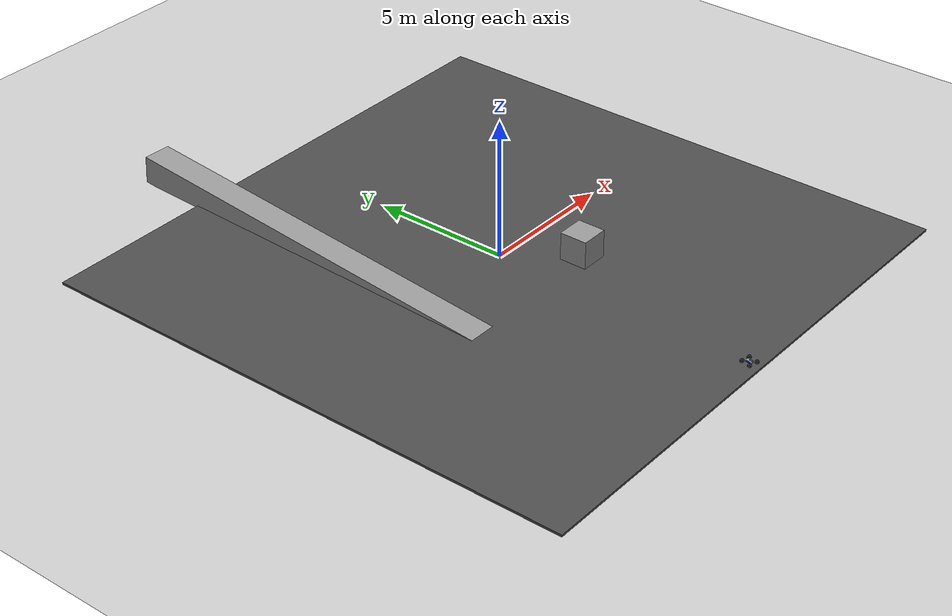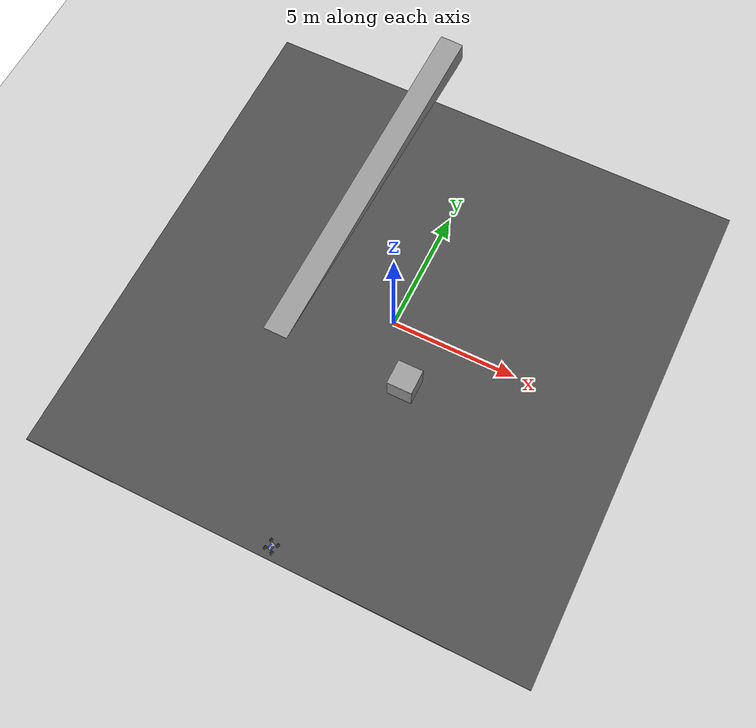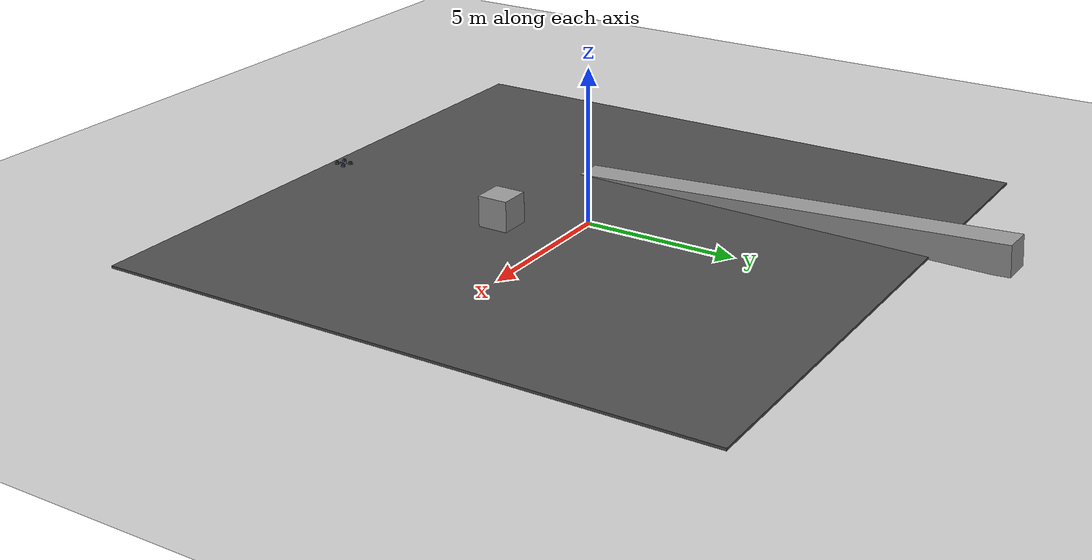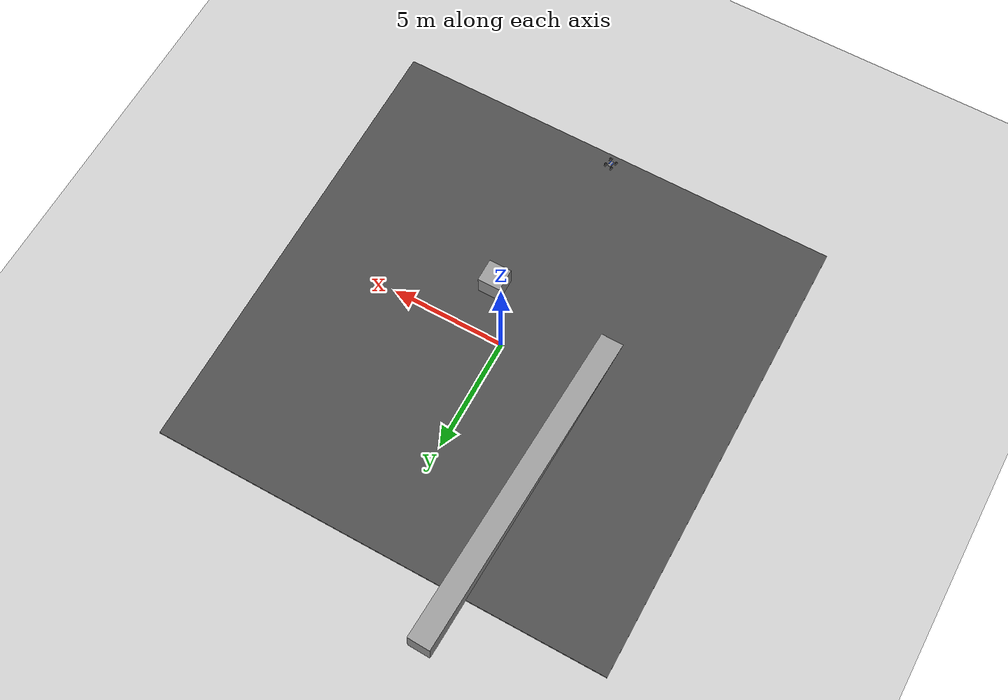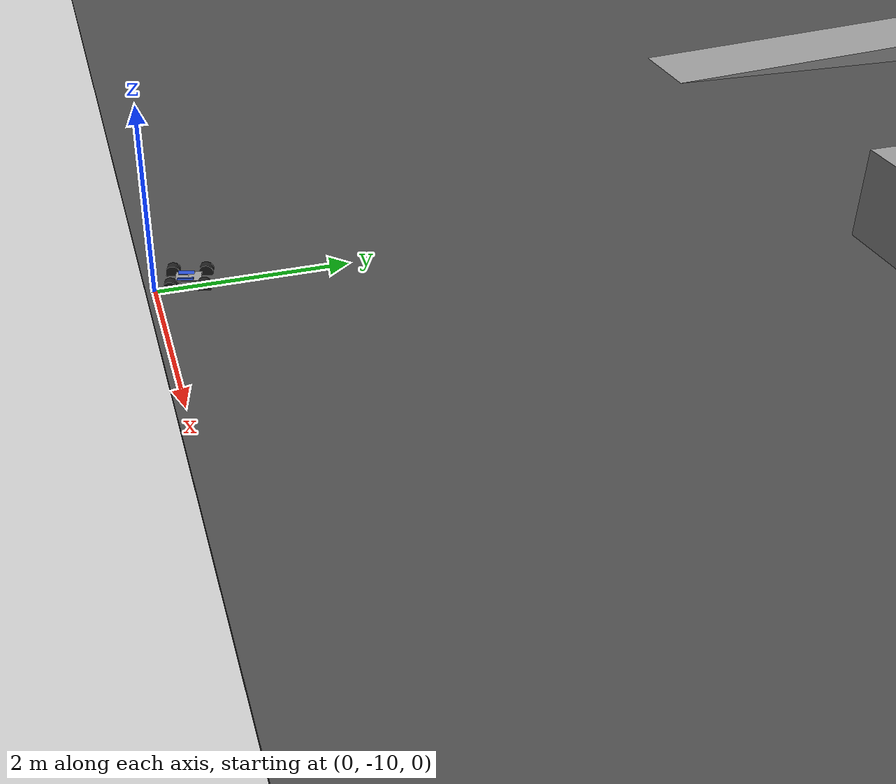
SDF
<sdf version="1.6">
 <world name="default">
  <light name="sun" type="directional">
   <pose>0 0 10 0 -0 0</pose>
   <diffuse>0.8 0.8 0.8 1</diffuse>
   <specular>0.2 0.2 0.2 1</specular>
   <attenuation>
    <range>1000</range>
    <constant>0.9</constant>
    <linear>0.01</linear>
    <quadratic>0.001</quadratic>
   </attenuation>
   <direction>-0.5 0.1 -0.9</direction>
   <spot><inner_angle>0</inner_angle><outer_angle>0</outer_angle><falloff>0</falloff></spot>
  </light>
  <model name="ground_plane">
   <static>1</static>
   <link name="link">
    <collision name="collision">
     <geometry><plane><normal>0 0 1</normal><size>100 100</size></plane></geometry>
     <surface>
      <contact><collide_bitmask>65535</collide_bitmask></contact>
      <friction><ode><mu>100</mu><mu2>50</mu2></ode></friction>
     </surface>
    </collision>
    <visual name="visual">
     <cast_shadows>0</cast_shadows>
     <geometry><plane><normal>0 0 1</normal><size>100 100</size></plane></geometry>
     <material>
      <script><uri>file://media/materials/scripts/gazebo.material</uri><name>Gazebo/Grey</name></script>
     </material>
    </visual>
   </link>
  </model>
  <gravity>0 0 -9.8</gravity>
  <magnetic_field>6e-06 2.3e-05 -4.2e-05</magnetic_field>
  <atmosphere type="adiabatic"/>
  <physics type="ode">
   <max_step_size>0.001</max_step_size>
   <real_time_factor>1</real_time_factor>
   <real_time_update_rate>1000</real_time_update_rate>
  </physics>
  <scene><ambient>0.4 0.4 0.4 1</ambient><background>0.7 0.7 0.7 1</background><shadows>1</shadows></scene>
  <spherical_coordinates>
   <surface_model>EARTH_WGS84</surface_model>
   <latitude_deg>0</latitude_deg>
   <longitude_deg>0</longitude_deg>
   <elevation>0</elevation>
   <heading_deg>0</heading_deg>
  </spherical_coordinates>
  <model name="ackermann_vehicle">
   <link name="base_link">
    <inertial>
     <pose>-0.006634 0 -0.003536 0 -0 0</pose>
     <mass>3.795</mass>
     <inertia>
      <ixx>0.0121404</ixx>
      <ixy>0</ixy>
      <ixz>0.000102071</ixz>
      <iyy>0.0201814</iyy>
      <iyz>0</iyz>
      <izz>0.0301018</izz>
     </inertia>
    </inertial>
    <collision name="base_link_fixed_joint_lump__chassis_collision">
     <pose>0 0 -0.005 0 -0 0</pose>
     <geometry><box><size>0.258 0.168 0.01</size></box></geometry>
    </collision>
    <collision name="base_link_fixed_joint_lump__left_battery_collision_1">
     <pose>-0.025 0.057319 0.00052 0.349066 -0 0</pose>
     <geometry><box><size>0.16 0.047 0.024</size></box></geometry>
    </collision>
    <collision name="base_link_fixed_joint_lump__right_battery_collision_2">
     <pose>-0.025 -0.057319 0.00052 -0.349066 0 0</pose>
     <geometry><box><size>0.16 0.047 0.024</size></box></geometry>
    </collision>
    <visual name="base_link_visual">
     <geometry><box><size>0.01 0.01 0.01</size></box></geometry>
     <material>
      <script><name>Gazebo/Grey</name><uri>file://media/materials/scripts/gazebo.material</uri></script>
     </material>
    </visual>
    <visual name="base_link_fixed_joint_lump__chassis_visual_1">
     <pose>0 0 -0.005 0 -0 0</pose>
     <geometry><box><size>0.258 0.168 0.01</size></box></geometry>
     <material>
      <script><name>Gazebo/Grey</name><uri>file://media/materials/scripts/gazebo.material</uri></script>
     </material>
    </visual>
    <visual name="base_link_fixed_joint_lump__left_battery_visual_2">
     <pose>-0.025 0.057319 0.00052 0.349066 -0 0</pose>
     <geometry><box><size>0.16 0.047 0.024</size></box></geometry>
     <material>
      <script><name>Gazebo/Blue</name><uri>file://media/materials/scripts/gazebo.material</uri></script>
     </material>
    </visual>
    <visual name="base_link_fixed_joint_lump__right_battery_visual_3">
     <pose>-0.025 -0.057319 0.00052 -0.349066 0 0</pose>
     <geometry><box><size>0.16 0.047 0.024</size></box></geometry>
     <material>
      <script><name>Gazebo/Blue</name><uri>file://media/materials/scripts/gazebo.material</uri></script>
     </material>
    </visual>
   </link>
   <joint name="left_front_shock" type="prismatic">
    <pose relative_to="base_link">0.1675 0.1525 -0.0235 0 -0 0</pose>
    <parent>base_link</parent>
    <child>left_steering_link</child>
    <axis>
     <xyz>0 0 -1</xyz>
     <limit><lower>-0.042</lower><upper>0.042</upper><effort>12.5106</effort><velocity>1000</velocity></limit>
     <dynamics><spring_reference>0</spring_reference><spring_stiffness>0</spring_stiffness></dynamics>
    </axis>
   </joint>
   <link name="left_steering_link">
    <pose relative_to="left_front_shock">0 0 0 0 -0 0</pose>
    <inertial>
     <mass>0.001</mass>
     <inertia><ixx>0.001</ixx><ixy>0</ixy><ixz>0</ixz><iyy>0.001</iyy><iyz>0</iyz><izz>0.001</izz></inertia>
    </inertial>
   </link>
   <joint name="left_steering_joint" type="revolute">
    <pose relative_to="left_steering_link">0 0 0 0 -0 0</pose>
    <parent>left_steering_link</parent>
    <child>left_front_axle_carrier</child>
    <axis>
     <xyz>0 0 1</xyz>
     <limit>
      <lower>-0.785398</lower>
      <upper>0.785398</upper>
      <effort>0.5649</effort>
      <velocity>4.553</velocity>
     </limit>
     <dynamics><spring_reference>0</spring_reference><spring_stiffness>0</spring_stiffness></dynamics>
    </axis>
   </joint>
   <link name="left_front_axle_carrier">
    <pose relative_to="left_steering_joint">0 0 0 0 -0 0</pose>
    <inertial>
     <mass>0.001</mass>
     <inertia><ixx>0.001</ixx><ixy>0</ixy><ixz>0</ixz><iyy>0.001</iyy><iyz>0</iyz><izz>0.001</izz></inertia>
    </inertial>
   </link>
   <joint name="left_front_axle" type="revolute">
    <pose relative_to="left_front_axle_carrier">0 0 0 1.5708 -0 0</pose>
    <parent>left_front_axle_carrier</parent>
    <child>left_front_wheel</child>
    <axis>
     <xyz>0 0 -1</xyz>
     <limit><effort>5.12766</effort><velocity>244.87</velocity><lower>-1e+16</lower><upper>1e+16</upper></limit>
     <dynamics><spring_reference>0</spring_reference><spring_stiffness>0</spring_stiffness></dynamics>
    </axis>
   </joint>
   <link name="left_front_wheel">
    <pose relative_to="left_front_axle">0 0 0 0 -0 0</pose>
    <inertial>
     <mass>0.29</mass>
     <inertia>
      <ixx>0.000746466</ixx>
      <ixy>0</ixy>
      <ixz>0</ixz>
      <iyy>0.000746466</iyy>
      <iyz>0</iyz>
      <izz>0.00111094</izz>
     </inertia>
    </inertial>
    <collision name="left_front_wheel_collision">
     <geometry><cylinder><length>0.0889</length><radius>0.073025</radius></cylinder></geometry>
    </collision>
    <visual name="left_front_wheel_visual">
     <geometry><cylinder><length>0.0889</length><radius>0.073025</radius></cylinder></geometry>
     <material>
      <script><name>Gazebo/Black</name><uri>file://media/materials/scripts/gazebo.material</uri></script>
     </material>
    </visual>
   </link>
   <joint name="left_rear_shock" type="prismatic">
    <pose relative_to="base_link">-0.1675 0.1525 -0.0235 0 -0 0</pose>
    <parent>base_link</parent>
    <child>left_rear_axle_carrier</child>
    <axis>
     <xyz>0 0 -1</xyz>
     <limit><lower>-0.042</lower><upper>0.042</upper><effort>12.5106</effort><velocity>1000</velocity></limit>
     <dynamics><spring_reference>0</spring_reference><spring_stiffness>0</spring_stiffness></dynamics>
    </axis>
   </joint>
   <link name="left_rear_axle_carrier">
    <pose relative_to="left_rear_shock">0 0 0 0 -0 0</pose>
    <inertial>
     <mass>0.001</mass>
     <inertia><ixx>0.001</ixx><ixy>0</ixy><ixz>0</ixz><iyy>0.001</iyy><iyz>0</iyz><izz>0.001</izz></inertia>
    </inertial>
   </link>
   <joint name="left_rear_axle" type="revolute">
    <pose relative_to="left_rear_axle_carrier">0 0 0 1.5708 -0 0</pose>
    <parent>left_rear_axle_carrier</parent>
    <child>left_rear_wheel</child>
    <axis>
     <xyz>0 0 -1</xyz>
     <limit><effort>5.12766</effort><velocity>244.87</velocity><lower>-1e+16</lower><upper>1e+16</upper></limit>
     <dynamics><spring_reference>0</spring_reference><spring_stiffness>0</spring_stiffness></dynamics>
    </axis>
   </joint>
   <link name="left_rear_wheel">
    <pose relative_to="left_rear_axle">0 0 0 0 -0 0</pose>
    <inertial>
     <mass>0.29</mass>
     <inertia>
      <ixx>0.000746466</ixx>
      <ixy>0</ixy>
      <ixz>0</ixz>
      <iyy>0.000746466</iyy>
      <iyz>0</iyz>
      <izz>0.00111094</izz>
     </inertia>
    </inertial>
    <collision name="left_rear_wheel_collision">
     <geometry><cylinder><length>0.0889</length><radius>0.073025</radius></cylinder></geometry>
    </collision>
    <visual name="left_rear_wheel_visual">
     <geometry><cylinder><length>0.0889</length><radius>0.073025</radius></cylinder></geometry>
     <material>
      <script><name>Gazebo/Black</name><uri>file://media/materials/scripts/gazebo.material</uri></script>
     </material>
    </visual>
   </link>
   <joint name="right_front_shock" type="prismatic">
    <pose relative_to="base_link">0.1675 -0.1525 -0.0235 0 -0 0</pose>
    <parent>base_link</parent>
    <child>right_steering_link</child>
    <axis>
     <xyz>0 0 -1</xyz>
     <limit><lower>-0.042</lower><upper>0.042</upper><effort>12.5106</effort><velocity>1000</velocity></limit>
     <dynamics><spring_reference>0</spring_reference><spring_stiffness>0</spring_stiffness></dynamics>
    </axis>
   </joint>
   <link name="right_steering_link">
    <pose relative_to="right_front_shock">0 0 0 0 -0 0</pose>
    <inertial>
     <mass>0.001</mass>
     <inertia><ixx>0.001</ixx><ixy>0</ixy><ixz>0</ixz><iyy>0.001</iyy><iyz>0</iyz><izz>0.001</izz></inertia>
    </inertial>
   </link>
   <joint name="right_steering_joint" type="revolute">
    <pose relative_to="right_steering_link">0 0 0 0 -0 0</pose>
    <parent>right_steering_link</parent>
    <child>right_front_axle_carrier</child>
    <axis>
     <xyz>0 0 1</xyz>
     <limit>
      <lower>-0.785398</lower>
      <upper>0.785398</upper>
      <effort>0.5649</effort>
      <velocity>4.553</velocity>
     </limit>
     <dynamics><spring_reference>0</spring_reference><spring_stiffness>0</spring_stiffness></dynamics>
    </axis>
   </joint>
   <link name="right_front_axle_carrier">
    <pose relative_to="right_steering_joint">0 0 0 0 -0 0</pose>
    <inertial>
     <mass>0.001</mass>
     <inertia><ixx>0.001</ixx><ixy>0</ixy><ixz>0</ixz><iyy>0.001</iyy><iyz>0</iyz><izz>0.001</izz></inertia>
    </inertial>
   </link>
   <joint name="right_front_axle" type="revolute">
    <pose relative_to="right_front_axle_carrier">0 0 0 1.5708 -0 0</pose>
    <parent>right_front_axle_carrier</parent>
    <child>right_front_wheel</child>
    <axis>
     <xyz>0 0 -1</xyz>
     <limit><effort>5.12766</effort><velocity>244.87</velocity><lower>-1e+16</lower><upper>1e+16</upper></limit>
     <dynamics><spring_reference>0</spring_reference><spring_stiffness>0</spring_stiffness></dynamics>
    </axis>
   </joint>
   <link name="right_front_wheel">
    <pose relative_to="right_front_axle">0 0 0 0 -0 0</pose>
    <inertial>
     <mass>0.29</mass>
     <inertia>
      <ixx>0.000746466</ixx>
      <ixy>0</ixy>
      <ixz>0</ixz>
      <iyy>0.000746466</iyy>
      <iyz>0</iyz>
      <izz>0.00111094</izz>
     </inertia>
    </inertial>
    <collision name="right_front_wheel_collision">
     <geometry><cylinder><length>0.0889</length><radius>0.073025</radius></cylinder></geometry>
    </collision>
    <visual name="right_front_wheel_visual">
     <geometry><cylinder><length>0.0889</length><radius>0.073025</radius></cylinder></geometry>
     <material>
      <script><name>Gazebo/Black</name><uri>file://media/materials/scripts/gazebo.material</uri></script>
     </material>
    </visual>
   </link>
   <joint name="right_rear_shock" type="prismatic">
    <pose relative_to="base_link">-0.1675 -0.1525 -0.0235 0 -0 0</pose>
    <parent>base_link</parent>
    <child>right_rear_axle_carrier</child>
    <axis>
     <xyz>0 0 -1</xyz>
     <limit><lower>-0.042</lower><upper>0.042</upper><effort>12.5106</effort><velocity>1000</velocity></limit>
     <dynamics><spring_reference>0</spring_reference><spring_stiffness>0</spring_stiffness></dynamics>
    </axis>
   </joint>
   <link name="right_rear_axle_carrier">
    <pose relative_to="right_rear_shock">0 0 0 0 -0 0</pose>
    <inertial>
     <mass>0.001</mass>
     <inertia><ixx>0.001</ixx><ixy>0</ixy><ixz>0</ixz><iyy>0.001</iyy><iyz>0</iyz><izz>0.001</izz></inertia>
    </inertial>
   </link>
   <joint name="right_rear_axle" type="revolute">
    <pose relative_to="right_rear_axle_carrier">0 0 0 1.5708 -0 0</pose>
    <parent>right_rear_axle_carrier</parent>
    <child>right_rear_wheel</child>
    <axis>
     <xyz>0 0 -1</xyz>
     <limit><effort>5.12766</effort><velocity>244.87</velocity><lower>-1e+16</lower><upper>1e+16</upper></limit>
     <dynamics><spring_reference>0</spring_reference><spring_stiffness>0</spring_stiffness></dynamics>
    </axis>
   </joint>
   <link name="right_rear_wheel">
    <pose relative_to="right_rear_axle">0 0 0 0 -0 0</pose>
    <inertial>
     <mass>0.29</mass>
     <inertia>
      <ixx>0.000746466</ixx>
      <ixy>0</ixy>
      <ixz>0</ixz>
      <iyy>0.000746466</iyy>
      <iyz>0</iyz>
      <izz>0.00111094</izz>
     </inertia>
    </inertial>
    <collision name="right_rear_wheel_collision">
     <geometry><cylinder><length>0.0889</length><radius>0.073025</radius></cylinder></geometry>
    </collision>
    <visual name="right_rear_wheel_visual">
     <geometry><cylinder><length>0.0889</length><radius>0.073025</radius></cylinder></geometry>
     <material>
      <script><name>Gazebo/Black</name><uri>file://media/materials/scripts/gazebo.material</uri></script>
     </material>
    </visual>
   </link>
   <static>0</static>
   <plugin name="gazebo_ros_control" filename="libgazebo_ros_control.so">
    <robotNamespace>/</robotNamespace>
   </plugin>
   <pose>-0.041355 -9.65232 0.104118 2.3e-05 0.000583 1.34014</pose>
  </model>
  <model name="unit_box">
   <pose>1.51984 -2.19053 0.549898 1.3e-05 5.9e-05 0.000649</pose>
   <link name="link">
    <inertial>
     <mass>1</mass>
     <inertia>
      <ixx>0.166667</ixx>
      <ixy>0</ixy>
      <ixz>0</ixz>
      <iyy>0.166667</iyy>
      <iyz>0</iyz>
      <izz>0.166667</izz>
     </inertia>
    </inertial>
    <collision name="collision"><geometry><box><size>1 1 1</size></box></geometry></collision>
    <visual name="visual">
     <geometry><box><size>1 1 1</size></box></geometry>
     <material>
      <script><name>Gazebo/Grey</name><uri>file://media/materials/scripts/gazebo.material</uri></script>
     </material>
    </visual>
   </link>
  </model>
  <model name="unit_box_clone">
   <pose>-3.69688 2.57859 -0.130146 1.54246 -1.50628 -1.57702</pose>
   <link name="link">
    <inertial>
     <mass>1</mass>
     <inertia>
      <ixx>0.166667</ixx>
      <ixy>0</ixy>
      <ixz>0</ixz>
      <iyy>0.166667</iyy>
      <iyz>0</iyz>
      <izz>0.166667</izz>
     </inertia>
    </inertial>
    <collision name="collision"><geometry><box><size>1 19.7064 1</size></box></geometry></collision>
    <visual name="visual">
     <geometry><box><size>1 19.7064 1</size></box></geometry>
     <material>
      <script><name>Gazebo/Grey</name><uri>file://media/materials/scripts/gazebo.material</uri></script>
     </material>
    </visual>
   </link>
  </model>
  <model name="asphalt_plane">
   <static>1</static>
   <link name="link">
    <collision name="collision"><geometry><box><size>20 20 0.1</size></box></geometry></collision>
    <visual name="visual">
     <cast_shadows>0</cast_shadows>
     <geometry><box><size>20 20 0.1</size></box></geometry>
     <material>
      <script>
       <uri>model://asphalt_plane/materials/scripts</uri>
       <uri>model://asphalt_plane/materials/textures</uri>
       <name>vrc/asphalt</name>
      </script>
     </material>
    </visual>
   </link>
   <pose>0.025727 -0.095663 0 0 -0 0</pose>
  </model>
 </world>
</sdf>
